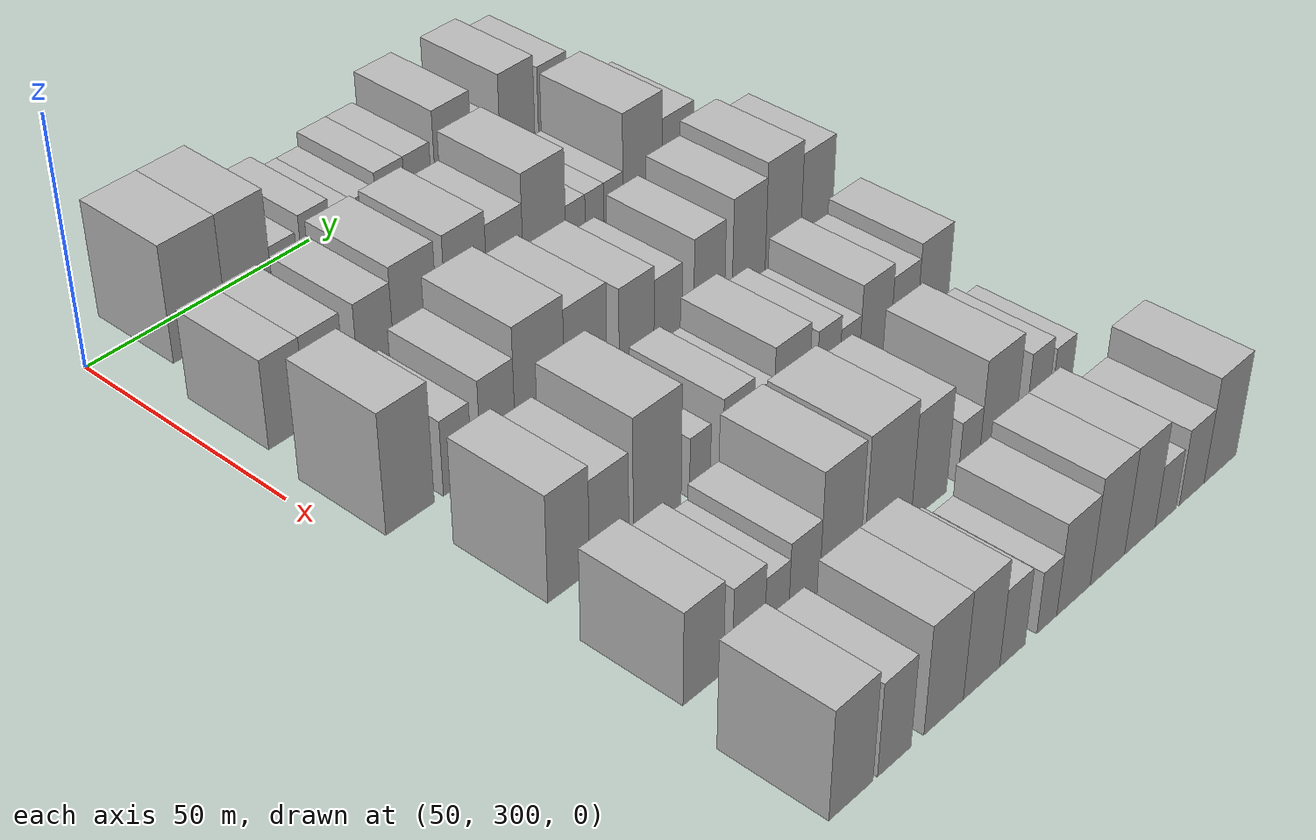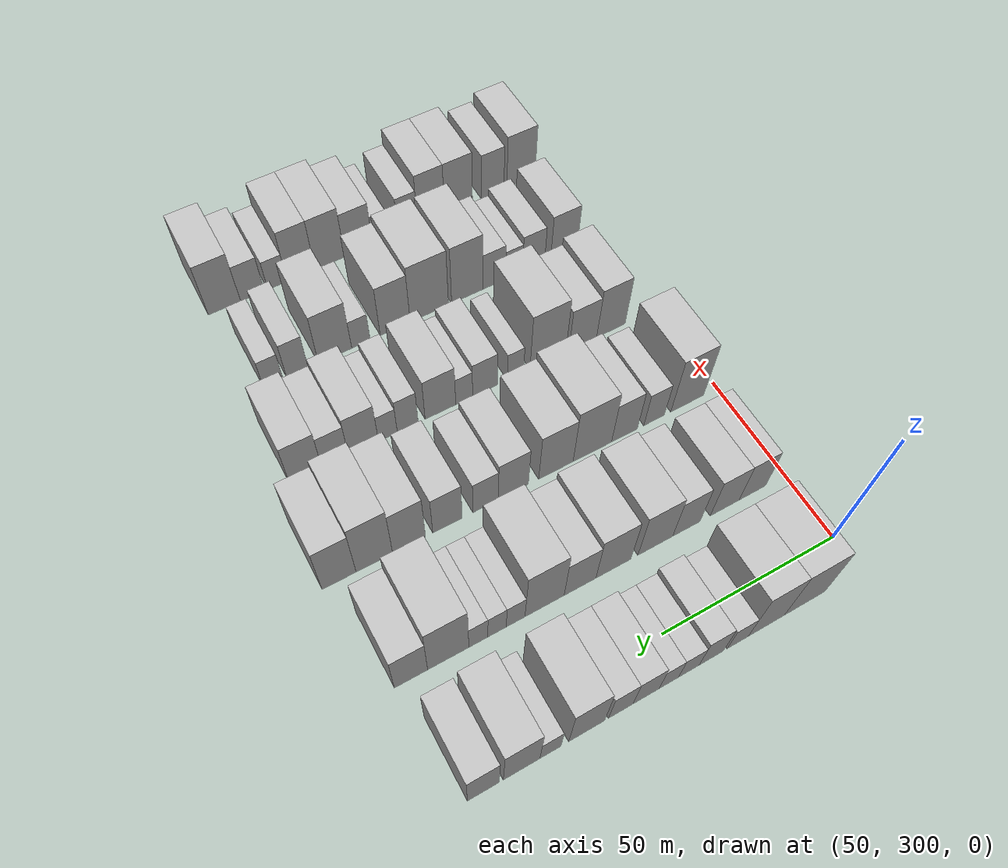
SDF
<sdf version="1.6">
 <world name="default">
  <model name="building_96">
   <static>1</static>
   <pose>50.0000 316.4440 0 0.000000 0.000000 0.000000</pose>
   <link name="link">
    <pose>0 0 12.00 0 0 0</pose>
    <collision name="collision"><geometry><box><size>20.0000 11.9352 24.0000</size></box></geometry></collision>
    <visual name="visual">
     <cast_shadows>0</cast_shadows>
     <geometry><box><size>20.0000 11.9352 24.0000</size></box></geometry>
     <material>
      <script>
       <uri>model://HANNAS_wall/materials/scripts</uri>
       <uri>model://HANNAS_wall/materials/textures</uri>
       <name>vrc/HANNAS_wall</name>
      </script>
     </material>
    </visual>
   </link>
  </model>
  <model name="building_97">
   <static>1</static>
   <pose>50.0000 327.6187 0 0.000000 0.000000 0.000000</pose>
   <link name="link">
    <pose>0 0 12.00 0 0 0</pose>
    <collision name="collision"><geometry><box><size>20.0000 10.4141 24.0000</size></box></geometry></collision>
    <visual name="visual">
     <cast_shadows>0</cast_shadows>
     <geometry><box><size>20.0000 10.4141 24.0000</size></box></geometry>
     <material>
      <script>
       <uri>model://HANNAS_wall/materials/scripts</uri>
       <uri>model://HANNAS_wall/materials/textures</uri>
       <name>vrc/HANNAS_wall</name>
      </script>
     </material>
    </visual>
   </link>
  </model>
  <model name="building_98">
   <static>1</static>
   <pose>50.0000 335.7996 0 0.000000 0.000000 0.000000</pose>
   <link name="link">
    <pose>0 0 6.00 0 0 0</pose>
    <collision name="collision"><geometry><box><size>20.0000 5.9477 12.0000</size></box></geometry></collision>
    <visual name="visual">
     <cast_shadows>0</cast_shadows>
     <geometry><box><size>20.0000 5.9477 12.0000</size></box></geometry>
     <material>
      <script>
       <uri>model://HANNAS_wall/materials/scripts</uri>
       <uri>model://HANNAS_wall/materials/textures</uri>
       <name>vrc/HANNAS_wall</name>
      </script>
     </material>
    </visual>
   </link>
  </model>
  <model name="building_99">
   <static>1</static>
   <pose>50.0000 343.1887 0 0.000000 0.000000 0.000000</pose>
   <link name="link">
    <pose>0 0 7.50 0 0 0</pose>
    <collision name="collision"><geometry><box><size>20.0000 6.8304 15.0000</size></box></geometry></collision>
    <visual name="visual">
     <cast_shadows>0</cast_shadows>
     <geometry><box><size>20.0000 6.8304 15.0000</size></box></geometry>
     <material>
      <script>
       <uri>model://HANNAS_wall/materials/scripts</uri>
       <uri>model://HANNAS_wall/materials/textures</uri>
       <name>vrc/HANNAS_wall</name>
      </script>
     </material>
    </visual>
   </link>
  </model>
  <model name="building_100">
   <static>1</static>
   <pose>50.0000 349.4321 0 0.000000 0.000000 0.000000</pose>
   <link name="link">
    <pose>0 0 6.00 0 0 0</pose>
    <collision name="collision"><geometry><box><size>20.0000 5.6566 12.0000</size></box></geometry></collision>
    <visual name="visual">
     <cast_shadows>0</cast_shadows>
     <geometry><box><size>20.0000 5.6566 12.0000</size></box></geometry>
     <material>
      <script>
       <uri>model://HANNAS_wall/materials/scripts</uri>
       <uri>model://HANNAS_wall/materials/textures</uri>
       <name>vrc/HANNAS_wall</name>
      </script>
     </material>
    </visual>
   </link>
  </model>
  <model name="building_101">
   <static>1</static>
   <pose>50.0000 354.8723 0 0.000000 0.000000 0.000000</pose>
   <link name="link">
    <pose>0 0 6.00 0 0 0</pose>
    <collision name="collision"><geometry><box><size>20.0000 5.2237 12.0000</size></box></geometry></collision>
    <visual name="visual">
     <cast_shadows>0</cast_shadows>
     <geometry><box><size>20.0000 5.2237 12.0000</size></box></geometry>
     <material>
      <script>
       <uri>model://HANNAS_wall/materials/scripts</uri>
       <uri>model://HANNAS_wall/materials/textures</uri>
       <name>vrc/HANNAS_wall</name>
      </script>
     </material>
    </visual>
   </link>
  </model>
  <model name="building_102">
   <static>1</static>
   <pose>50.0000 360.9731 0 0.000000 0.000000 0.000000</pose>
   <link name="link">
    <pose>0 0 7.50 0 0 0</pose>
    <collision name="collision"><geometry><box><size>20.0000 6.9780 15.0000</size></box></geometry></collision>
    <visual name="visual">
     <cast_shadows>0</cast_shadows>
     <geometry><box><size>20.0000 6.9780 15.0000</size></box></geometry>
     <material>
      <script>
       <uri>model://HANNAS_wall/materials/scripts</uri>
       <uri>model://HANNAS_wall/materials/textures</uri>
       <name>vrc/HANNAS_wall</name>
      </script>
     </material>
    </visual>
   </link>
  </model>
  <model name="building_103">
   <static>1</static>
   <pose>50.0000 367.7158 0 0.000000 0.000000 0.000000</pose>
   <link name="link">
    <pose>0 0 7.50 0 0 0</pose>
    <collision name="collision"><geometry><box><size>20.0000 6.5073 15.0000</size></box></geometry></collision>
    <visual name="visual">
     <cast_shadows>0</cast_shadows>
     <geometry><box><size>20.0000 6.5073 15.0000</size></box></geometry>
     <material>
      <script>
       <uri>model://HANNAS_wall/materials/scripts</uri>
       <uri>model://HANNAS_wall/materials/textures</uri>
       <name>vrc/HANNAS_wall</name>
      </script>
     </material>
    </visual>
   </link>
  </model>
  <model name="building_104">
   <static>1</static>
   <pose>50.0000 376.6193 0 0.000000 0.000000 0.000000</pose>
   <link name="link">
    <pose>0 0 10.50 0 0 0</pose>
    <collision name="collision"><geometry><box><size>20.0000 9.2997 21.0000</size></box></geometry></collision>
    <visual name="visual">
     <cast_shadows>0</cast_shadows>
     <geometry><box><size>20.0000 9.2997 21.0000</size></box></geometry>
     <material>
      <script>
       <uri>model://HANNAS_wall/materials/scripts</uri>
       <uri>model://HANNAS_wall/materials/textures</uri>
       <name>vrc/HANNAS_wall</name>
      </script>
     </material>
    </visual>
   </link>
  </model>
  <model name="building_105">
   <static>1</static>
   <pose>50.0000 385.9391 0 0.000000 0.000000 0.000000</pose>
   <link name="link">
    <pose>0 0 6.00 0 0 0</pose>
    <collision name="collision"><geometry><box><size>20.0000 5.3399 12.0000</size></box></geometry></collision>
    <visual name="visual">
     <cast_shadows>0</cast_shadows>
     <geometry><box><size>20.0000 5.3399 12.0000</size></box></geometry>
     <material>
      <script>
       <uri>model://HANNAS_wall/materials/scripts</uri>
       <uri>model://HANNAS_wall/materials/textures</uri>
       <name>vrc/HANNAS_wall</name>
      </script>
     </material>
    </visual>
   </link>
  </model>
  <model name="building_106">
   <static>1</static>
   <pose>50.0000 393.1750 0 0.000000 0.000000 0.000000</pose>
   <link name="link">
    <pose>0 0 10.50 0 0 0</pose>
    <collision name="collision"><geometry><box><size>20.0000 9.1319 21.0000</size></box></geometry></collision>
    <visual name="visual">
     <cast_shadows>0</cast_shadows>
     <geometry><box><size>20.0000 9.1319 21.0000</size></box></geometry>
     <material>
      <script>
       <uri>model://HANNAS_wall/materials/scripts</uri>
       <uri>model://HANNAS_wall/materials/textures</uri>
       <name>vrc/HANNAS_wall</name>
      </script>
     </material>
    </visual>
   </link>
  </model>
  <model name="building_107">
   <static>1</static>
   <pose>50.0000 402.6415 0 0.000000 0.000000 0.000000</pose>
   <link name="link">
    <pose>0 0 9.00 0 0 0</pose>
    <collision name="collision"><geometry><box><size>20.0000 7.8012 18.0000</size></box></geometry></collision>
    <visual name="visual">
     <cast_shadows>0</cast_shadows>
     <geometry><box><size>20.0000 7.8012 18.0000</size></box></geometry>
     <material>
      <script>
       <uri>model://HANNAS_wall/materials/scripts</uri>
       <uri>model://HANNAS_wall/materials/textures</uri>
       <name>vrc/HANNAS_wall</name>
      </script>
     </material>
    </visual>
   </link>
  </model>
  <model name="building_213">
   <static>1</static>
   <pose>79.0000 310.1770 0 0.000000 0.000000 0.000000</pose>
   <link name="link">
    <pose>0 0 9.00 0 0 0</pose>
    <collision name="collision"><geometry><box><size>20.0000 8.1697 18.0000</size></box></geometry></collision>
    <visual name="visual">
     <cast_shadows>0</cast_shadows>
     <geometry><box><size>20.0000 8.1697 18.0000</size></box></geometry>
     <material>
      <script>
       <uri>model://HANNAS_wall/materials/scripts</uri>
       <uri>model://HANNAS_wall/materials/textures</uri>
       <name>vrc/HANNAS_wall</name>
      </script>
     </material>
    </visual>
   </link>
  </model>
  <model name="building_214">
   <static>1</static>
   <pose>79.0000 318.5903 0 0.000000 0.000000 0.000000</pose>
   <link name="link">
    <pose>0 0 9.00 0 0 0</pose>
    <collision name="collision"><geometry><box><size>20.0000 8.6569 18.0000</size></box></geometry></collision>
    <visual name="visual">
     <cast_shadows>0</cast_shadows>
     <geometry><box><size>20.0000 8.6569 18.0000</size></box></geometry>
     <material>
      <script>
       <uri>model://HANNAS_wall/materials/scripts</uri>
       <uri>model://HANNAS_wall/materials/textures</uri>
       <name>vrc/HANNAS_wall</name>
      </script>
     </material>
    </visual>
   </link>
  </model>
  <model name="building_215">
   <static>1</static>
   <pose>79.0000 329.9672 0 0.000000 0.000000 0.000000</pose>
   <link name="link">
    <pose>0 0 9.00 0 0 0</pose>
    <collision name="collision"><geometry><box><size>20.0000 8.0969 18.0000</size></box></geometry></collision>
    <visual name="visual">
     <cast_shadows>0</cast_shadows>
     <geometry><box><size>20.0000 8.0969 18.0000</size></box></geometry>
     <material>
      <script>
       <uri>model://HANNAS_wall/materials/scripts</uri>
       <uri>model://HANNAS_wall/materials/textures</uri>
       <name>vrc/HANNAS_wall</name>
      </script>
     </material>
    </visual>
   </link>
  </model>
  <model name="building_216">
   <static>1</static>
   <pose>79.0000 339.0556 0 0.000000 0.000000 0.000000</pose>
   <link name="link">
    <pose>0 0 10.50 0 0 0</pose>
    <collision name="collision"><geometry><box><size>20.0000 10.0798 21.0000</size></box></geometry></collision>
    <visual name="visual">
     <cast_shadows>0</cast_shadows>
     <geometry><box><size>20.0000 10.0798 21.0000</size></box></geometry>
     <material>
      <script>
       <uri>model://HANNAS_wall/materials/scripts</uri>
       <uri>model://HANNAS_wall/materials/textures</uri>
       <name>vrc/HANNAS_wall</name>
      </script>
     </material>
    </visual>
   </link>
  </model>
  <model name="building_217">
   <static>1</static>
   <pose>79.0000 351.0443 0 0.000000 0.000000 0.000000</pose>
   <link name="link">
    <pose>0 0 10.50 0 0 0</pose>
    <collision name="collision"><geometry><box><size>20.0000 9.8975 21.0000</size></box></geometry></collision>
    <visual name="visual">
     <cast_shadows>0</cast_shadows>
     <geometry><box><size>20.0000 9.8975 21.0000</size></box></geometry>
     <material>
      <script>
       <uri>model://HANNAS_wall/materials/scripts</uri>
       <uri>model://HANNAS_wall/materials/textures</uri>
       <name>vrc/HANNAS_wall</name>
      </script>
     </material>
    </visual>
   </link>
  </model>
  <model name="building_218">
   <static>1</static>
   <pose>79.0000 360.4168 0 0.000000 0.000000 0.000000</pose>
   <link name="link">
    <pose>0 0 9.00 0 0 0</pose>
    <collision name="collision"><geometry><box><size>20.0000 8.8476 18.0000</size></box></geometry></collision>
    <visual name="visual">
     <cast_shadows>0</cast_shadows>
     <geometry><box><size>20.0000 8.8476 18.0000</size></box></geometry>
     <material>
      <script>
       <uri>model://HANNAS_wall/materials/scripts</uri>
       <uri>model://HANNAS_wall/materials/textures</uri>
       <name>vrc/HANNAS_wall</name>
      </script>
     </material>
    </visual>
   </link>
  </model>
  <model name="building_219">
   <static>1</static>
   <pose>79.0000 370.1759 0 0.000000 0.000000 0.000000</pose>
   <link name="link">
    <pose>0 0 12.00 0 0 0</pose>
    <collision name="collision"><geometry><box><size>20.0000 10.6705 24.0000</size></box></geometry></collision>
    <visual name="visual">
     <cast_shadows>0</cast_shadows>
     <geometry><box><size>20.0000 10.6705 24.0000</size></box></geometry>
     <material>
      <script>
       <uri>model://HANNAS_wall/materials/scripts</uri>
       <uri>model://HANNAS_wall/materials/textures</uri>
       <name>vrc/HANNAS_wall</name>
      </script>
     </material>
    </visual>
   </link>
  </model>
  <model name="building_220">
   <static>1</static>
   <pose>79.0000 378.0116 0 0.000000 0.000000 0.000000</pose>
   <link name="link">
    <pose>0 0 6.00 0 0 0</pose>
    <collision name="collision"><geometry><box><size>20.0000 5.0010 12.0000</size></box></geometry></collision>
    <visual name="visual">
     <cast_shadows>0</cast_shadows>
     <geometry><box><size>20.0000 5.0010 12.0000</size></box></geometry>
     <material>
      <script>
       <uri>model://HANNAS_wall/materials/scripts</uri>
       <uri>model://HANNAS_wall/materials/textures</uri>
       <name>vrc/HANNAS_wall</name>
      </script>
     </material>
    </visual>
   </link>
  </model>
  <model name="building_221">
   <static>1</static>
   <pose>79.0000 382.9486 0 0.000000 0.000000 0.000000</pose>
   <link name="link">
    <pose>0 0 6.00 0 0 0</pose>
    <collision name="collision"><geometry><box><size>20.0000 4.8729 12.0000</size></box></geometry></collision>
    <visual name="visual">
     <cast_shadows>0</cast_shadows>
     <geometry><box><size>20.0000 4.8729 12.0000</size></box></geometry>
     <material>
      <script>
       <uri>model://HANNAS_wall/materials/scripts</uri>
       <uri>model://HANNAS_wall/materials/textures</uri>
       <name>vrc/HANNAS_wall</name>
      </script>
     </material>
    </visual>
   </link>
  </model>
  <model name="building_222">
   <static>1</static>
   <pose>79.0000 387.8790 0 0.000000 0.000000 0.000000</pose>
   <link name="link">
    <pose>0 0 6.00 0 0 0</pose>
    <collision name="collision"><geometry><box><size>20.0000 4.9879 12.0000</size></box></geometry></collision>
    <visual name="visual">
     <cast_shadows>0</cast_shadows>
     <geometry><box><size>20.0000 4.9879 12.0000</size></box></geometry>
     <material>
      <script>
       <uri>model://HANNAS_wall/materials/scripts</uri>
       <uri>model://HANNAS_wall/materials/textures</uri>
       <name>vrc/HANNAS_wall</name>
      </script>
     </material>
    </visual>
   </link>
  </model>
  <model name="building_223">
   <static>1</static>
   <pose>79.0000 395.6811 0 0.000000 0.000000 0.000000</pose>
   <link name="link">
    <pose>0 0 12.00 0 0 0</pose>
    <collision name="collision"><geometry><box><size>20.0000 10.6163 24.0000</size></box></geometry></collision>
    <visual name="visual">
     <cast_shadows>0</cast_shadows>
     <geometry><box><size>20.0000 10.6163 24.0000</size></box></geometry>
     <material>
      <script>
       <uri>model://HANNAS_wall/materials/scripts</uri>
       <uri>model://HANNAS_wall/materials/textures</uri>
       <name>vrc/HANNAS_wall</name>
      </script>
     </material>
    </visual>
   </link>
  </model>
  <model name="building_224">
   <static>1</static>
   <pose>79.0000 405.2188 0 0.000000 0.000000 0.000000</pose>
   <link name="link">
    <pose>0 0 9.00 0 0 0</pose>
    <collision name="collision"><geometry><box><size>20.0000 8.4591 18.0000</size></box></geometry></collision>
    <visual name="visual">
     <cast_shadows>0</cast_shadows>
     <geometry><box><size>20.0000 8.4591 18.0000</size></box></geometry>
     <material>
      <script>
       <uri>model://HANNAS_wall/materials/scripts</uri>
       <uri>model://HANNAS_wall/materials/textures</uri>
       <name>vrc/HANNAS_wall</name>
      </script>
     </material>
    </visual>
   </link>
  </model>
  <model name="building_327">
   <static>1</static>
   <pose>108.0000 309.6311 0 0.000000 0.000000 0.000000</pose>
   <link name="link">
    <pose>0 0 12.00 0 0 0</pose>
    <collision name="collision"><geometry><box><size>20.0000 10.3707 24.0000</size></box></geometry></collision>
    <visual name="visual">
     <cast_shadows>0</cast_shadows>
     <geometry><box><size>20.0000 10.3707 24.0000</size></box></geometry>
     <material>
      <script>
       <uri>model://HANNAS_wall/materials/scripts</uri>
       <uri>model://HANNAS_wall/materials/textures</uri>
       <name>vrc/HANNAS_wall</name>
      </script>
     </material>
    </visual>
   </link>
  </model>
  <model name="building_328">
   <static>1</static>
   <pose>108.0000 319.9997 0 0.000000 0.000000 0.000000</pose>
   <link name="link">
    <pose>0 0 7.50 0 0 0</pose>
    <collision name="collision"><geometry><box><size>20.0000 6.3665 15.0000</size></box></geometry></collision>
    <visual name="visual">
     <cast_shadows>0</cast_shadows>
     <geometry><box><size>20.0000 6.3665 15.0000</size></box></geometry>
     <material>
      <script>
       <uri>model://HANNAS_wall/materials/scripts</uri>
       <uri>model://HANNAS_wall/materials/textures</uri>
       <name>vrc/HANNAS_wall</name>
      </script>
     </material>
    </visual>
   </link>
  </model>
  <model name="building_329">
   <static>1</static>
   <pose>108.0000 329.1177 0 0.000000 0.000000 0.000000</pose>
   <link name="link">
    <pose>0 0 9.00 0 0 0</pose>
    <collision name="collision"><geometry><box><size>20.0000 7.8697 18.0000</size></box></geometry></collision>
    <visual name="visual">
     <cast_shadows>0</cast_shadows>
     <geometry><box><size>20.0000 7.8697 18.0000</size></box></geometry>
     <material>
      <script>
       <uri>model://HANNAS_wall/materials/scripts</uri>
       <uri>model://HANNAS_wall/materials/textures</uri>
       <name>vrc/HANNAS_wall</name>
      </script>
     </material>
    </visual>
   </link>
  </model>
  <model name="building_330">
   <static>1</static>
   <pose>108.0000 338.8087 0 0.000000 0.000000 0.000000</pose>
   <link name="link">
    <pose>0 0 12.00 0 0 0</pose>
    <collision name="collision"><geometry><box><size>20.0000 11.5123 24.0000</size></box></geometry></collision>
    <visual name="visual">
     <cast_shadows>0</cast_shadows>
     <geometry><box><size>20.0000 11.5123 24.0000</size></box></geometry>
     <material>
      <script>
       <uri>model://HANNAS_wall/materials/scripts</uri>
       <uri>model://HANNAS_wall/materials/textures</uri>
       <name>vrc/HANNAS_wall</name>
      </script>
     </material>
    </visual>
   </link>
  </model>
  <model name="building_331">
   <static>1</static>
   <pose>108.0000 349.6052 0 0.000000 0.000000 0.000000</pose>
   <link name="link">
    <pose>0 0 10.50 0 0 0</pose>
    <collision name="collision"><geometry><box><size>20.0000 10.0808 21.0000</size></box></geometry></collision>
    <visual name="visual">
     <cast_shadows>0</cast_shadows>
     <geometry><box><size>20.0000 10.0808 21.0000</size></box></geometry>
     <material>
      <script>
       <uri>model://HANNAS_wall/materials/scripts</uri>
       <uri>model://HANNAS_wall/materials/textures</uri>
       <name>vrc/HANNAS_wall</name>
      </script>
     </material>
    </visual>
   </link>
  </model>
  <model name="building_332">
   <static>1</static>
   <pose>108.0000 361.9657 0 0.000000 0.000000 0.000000</pose>
   <link name="link">
    <pose>0 0 9.00 0 0 0</pose>
    <collision name="collision"><geometry><box><size>20.0000 8.6402 18.0000</size></box></geometry></collision>
    <visual name="visual">
     <cast_shadows>0</cast_shadows>
     <geometry><box><size>20.0000 8.6402 18.0000</size></box></geometry>
     <material>
      <script>
       <uri>model://HANNAS_wall/materials/scripts</uri>
       <uri>model://HANNAS_wall/materials/textures</uri>
       <name>vrc/HANNAS_wall</name>
      </script>
     </material>
    </visual>
   </link>
  </model>
  <model name="building_333">
   <static>1</static>
   <pose>108.0000 369.8508 0 0.000000 0.000000 0.000000</pose>
   <link name="link">
    <pose>0 0 7.50 0 0 0</pose>
    <collision name="collision"><geometry><box><size>20.0000 7.1300 15.0000</size></box></geometry></collision>
    <visual name="visual">
     <cast_shadows>0</cast_shadows>
     <geometry><box><size>20.0000 7.1300 15.0000</size></box></geometry>
     <material>
      <script>
       <uri>model://HANNAS_wall/materials/scripts</uri>
       <uri>model://HANNAS_wall/materials/textures</uri>
       <name>vrc/HANNAS_wall</name>
      </script>
     </material>
    </visual>
   </link>
  </model>
  <model name="building_334">
   <static>1</static>
   <pose>108.0000 380.4694 0 0.000000 0.000000 0.000000</pose>
   <link name="link">
    <pose>0 0 9.00 0 0 0</pose>
    <collision name="collision"><geometry><box><size>20.0000 8.1072 18.0000</size></box></geometry></collision>
    <visual name="visual">
     <cast_shadows>0</cast_shadows>
     <geometry><box><size>20.0000 8.1072 18.0000</size></box></geometry>
     <material>
      <script>
       <uri>model://HANNAS_wall/materials/scripts</uri>
       <uri>model://HANNAS_wall/materials/textures</uri>
       <name>vrc/HANNAS_wall</name>
      </script>
     </material>
    </visual>
   </link>
  </model>
  <model name="building_335">
   <static>1</static>
   <pose>108.0000 390.9584 0 0.000000 0.000000 0.000000</pose>
   <link name="link">
    <pose>0 0 10.50 0 0 0</pose>
    <collision name="collision"><geometry><box><size>20.0000 8.8708 21.0000</size></box></geometry></collision>
    <visual name="visual">
     <cast_shadows>0</cast_shadows>
     <geometry><box><size>20.0000 8.8708 21.0000</size></box></geometry>
     <material>
      <script>
       <uri>model://HANNAS_wall/materials/scripts</uri>
       <uri>model://HANNAS_wall/materials/textures</uri>
       <name>vrc/HANNAS_wall</name>
      </script>
     </material>
    </visual>
   </link>
  </model>
  <model name="building_336">
   <static>1</static>
   <pose>108.0000 400.2625 0 0.000000 0.000000 0.000000</pose>
   <link name="link">
    <pose>0 0 12.00 0 0 0</pose>
    <collision name="collision"><geometry><box><size>20.0000 9.7373 24.0000</size></box></geometry></collision>
    <visual name="visual">
     <cast_shadows>0</cast_shadows>
     <geometry><box><size>20.0000 9.7373 24.0000</size></box></geometry>
     <material>
      <script>
       <uri>model://HANNAS_wall/materials/scripts</uri>
       <uri>model://HANNAS_wall/materials/textures</uri>
       <name>vrc/HANNAS_wall</name>
      </script>
     </material>
    </visual>
   </link>
  </model>
  <model name="building_337">
   <static>1</static>
   <pose>108.0000 409.5854 0 0.000000 0.000000 0.000000</pose>
   <link name="link">
    <pose>0 0 10.50 0 0 0</pose>
    <collision name="collision"><geometry><box><size>20.0000 8.9086 21.0000</size></box></geometry></collision>
    <visual name="visual">
     <cast_shadows>0</cast_shadows>
     <geometry><box><size>20.0000 8.9086 21.0000</size></box></geometry>
     <material>
      <script>
       <uri>model://HANNAS_wall/materials/scripts</uri>
       <uri>model://HANNAS_wall/materials/textures</uri>
       <name>vrc/HANNAS_wall</name>
      </script>
     </material>
    </visual>
   </link>
  </model>
  <model name="building_443">
   <static>1</static>
   <pose>137.0000 314.6886 0 0.000000 0.000000 0.000000</pose>
   <link name="link">
    <pose>0 0 10.50 0 0 0</pose>
    <collision name="collision"><geometry><box><size>20.0000 9.1594 21.0000</size></box></geometry></collision>
    <visual name="visual">
     <cast_shadows>0</cast_shadows>
     <geometry><box><size>20.0000 9.1594 21.0000</size></box></geometry>
     <material>
      <script>
       <uri>model://HANNAS_wall/materials/scripts</uri>
       <uri>model://HANNAS_wall/materials/textures</uri>
       <name>vrc/HANNAS_wall</name>
      </script>
     </material>
    </visual>
   </link>
  </model>
  <model name="building_444">
   <static>1</static>
   <pose>137.0000 323.6743 0 0.000000 0.000000 0.000000</pose>
   <link name="link">
    <pose>0 0 9.00 0 0 0</pose>
    <collision name="collision"><geometry><box><size>20.0000 8.8120 18.0000</size></box></geometry></collision>
    <visual name="visual">
     <cast_shadows>0</cast_shadows>
     <geometry><box><size>20.0000 8.8120 18.0000</size></box></geometry>
     <material>
      <script>
       <uri>model://HANNAS_wall/materials/scripts</uri>
       <uri>model://HANNAS_wall/materials/textures</uri>
       <name>vrc/HANNAS_wall</name>
      </script>
     </material>
    </visual>
   </link>
  </model>
  <model name="building_445">
   <static>1</static>
   <pose>137.0000 334.6371 0 0.000000 0.000000 0.000000</pose>
   <link name="link">
    <pose>0 0 12.00 0 0 0</pose>
    <collision name="collision"><geometry><box><size>20.0000 11.1135 24.0000</size></box></geometry></collision>
    <visual name="visual">
     <cast_shadows>0</cast_shadows>
     <geometry><box><size>20.0000 11.1135 24.0000</size></box></geometry>
     <material>
      <script>
       <uri>model://HANNAS_wall/materials/scripts</uri>
       <uri>model://HANNAS_wall/materials/textures</uri>
       <name>vrc/HANNAS_wall</name>
      </script>
     </material>
    </visual>
   </link>
  </model>
  <model name="building_446">
   <static>1</static>
   <pose>137.0000 344.6770 0 0.000000 0.000000 0.000000</pose>
   <link name="link">
    <pose>0 0 6.00 0 0 0</pose>
    <collision name="collision"><geometry><box><size>20.0000 4.9663 12.0000</size></box></geometry></collision>
    <visual name="visual">
     <cast_shadows>0</cast_shadows>
     <geometry><box><size>20.0000 4.9663 12.0000</size></box></geometry>
     <material>
      <script>
       <uri>model://HANNAS_wall/materials/scripts</uri>
       <uri>model://HANNAS_wall/materials/textures</uri>
       <name>vrc/HANNAS_wall</name>
      </script>
     </material>
    </visual>
   </link>
  </model>
  <model name="building_447">
   <static>1</static>
   <pose>137.0000 353.8791 0 0.000000 0.000000 0.000000</pose>
   <link name="link">
    <pose>0 0 7.50 0 0 0</pose>
    <collision name="collision"><geometry><box><size>20.0000 7.4378 15.0000</size></box></geometry></collision>
    <visual name="visual">
     <cast_shadows>0</cast_shadows>
     <geometry><box><size>20.0000 7.4378 15.0000</size></box></geometry>
     <material>
      <script>
       <uri>model://HANNAS_wall/materials/scripts</uri>
       <uri>model://HANNAS_wall/materials/textures</uri>
       <name>vrc/HANNAS_wall</name>
      </script>
     </material>
    </visual>
   </link>
  </model>
  <model name="building_448">
   <static>1</static>
   <pose>137.0000 360.1022 0 0.000000 0.000000 0.000000</pose>
   <link name="link">
    <pose>0 0 6.00 0 0 0</pose>
    <collision name="collision"><geometry><box><size>20.0000 5.0084 12.0000</size></box></geometry></collision>
    <visual name="visual">
     <cast_shadows>0</cast_shadows>
     <geometry><box><size>20.0000 5.0084 12.0000</size></box></geometry>
     <material>
      <script>
       <uri>model://HANNAS_wall/materials/scripts</uri>
       <uri>model://HANNAS_wall/materials/textures</uri>
       <name>vrc/HANNAS_wall</name>
      </script>
     </material>
    </visual>
   </link>
  </model>
  <model name="building_449">
   <static>1</static>
   <pose>137.0000 367.1017 0 0.000000 0.000000 0.000000</pose>
   <link name="link">
    <pose>0 0 9.00 0 0 0</pose>
    <collision name="collision"><geometry><box><size>20.0000 8.9906 18.0000</size></box></geometry></collision>
    <visual name="visual">
     <cast_shadows>0</cast_shadows>
     <geometry><box><size>20.0000 8.9906 18.0000</size></box></geometry>
     <material>
      <script>
       <uri>model://HANNAS_wall/materials/scripts</uri>
       <uri>model://HANNAS_wall/materials/textures</uri>
       <name>vrc/HANNAS_wall</name>
      </script>
     </material>
    </visual>
   </link>
  </model>
  <model name="building_450">
   <static>1</static>
   <pose>137.0000 376.6030 0 0.000000 0.000000 0.000000</pose>
   <link name="link">
    <pose>0 0 7.50 0 0 0</pose>
    <collision name="collision"><geometry><box><size>20.0000 6.0119 15.0000</size></box></geometry></collision>
    <visual name="visual">
     <cast_shadows>0</cast_shadows>
     <geometry><box><size>20.0000 6.0119 15.0000</size></box></geometry>
     <material>
      <script>
       <uri>model://HANNAS_wall/materials/scripts</uri>
       <uri>model://HANNAS_wall/materials/textures</uri>
       <name>vrc/HANNAS_wall</name>
      </script>
     </material>
    </visual>
   </link>
  </model>
  <model name="building_451">
   <static>1</static>
   <pose>137.0000 382.2863 0 0.000000 0.000000 0.000000</pose>
   <link name="link">
    <pose>0 0 6.00 0 0 0</pose>
    <collision name="collision"><geometry><box><size>20.0000 5.3548 12.0000</size></box></geometry></collision>
    <visual name="visual">
     <cast_shadows>0</cast_shadows>
     <geometry><box><size>20.0000 5.3548 12.0000</size></box></geometry>
     <material>
      <script>
       <uri>model://HANNAS_wall/materials/scripts</uri>
       <uri>model://HANNAS_wall/materials/textures</uri>
       <name>vrc/HANNAS_wall</name>
      </script>
     </material>
    </visual>
   </link>
  </model>
  <model name="building_452">
   <static>1</static>
   <pose>137.0000 389.2031 0 0.000000 0.000000 0.000000</pose>
   <link name="link">
    <pose>0 0 9.00 0 0 0</pose>
    <collision name="collision"><geometry><box><size>20.0000 8.4788 18.0000</size></box></geometry></collision>
    <visual name="visual">
     <cast_shadows>0</cast_shadows>
     <geometry><box><size>20.0000 8.4788 18.0000</size></box></geometry>
     <material>
      <script>
       <uri>model://HANNAS_wall/materials/scripts</uri>
       <uri>model://HANNAS_wall/materials/textures</uri>
       <name>vrc/HANNAS_wall</name>
      </script>
     </material>
    </visual>
   </link>
  </model>
  <model name="building_453">
   <static>1</static>
   <pose>137.0000 397.1287 0 0.000000 0.000000 0.000000</pose>
   <link name="link">
    <pose>0 0 7.50 0 0 0</pose>
    <collision name="collision"><geometry><box><size>20.0000 7.3724 15.0000</size></box></geometry></collision>
    <visual name="visual">
     <cast_shadows>0</cast_shadows>
     <geometry><box><size>20.0000 7.3724 15.0000</size></box></geometry>
     <material>
      <script>
       <uri>model://HANNAS_wall/materials/scripts</uri>
       <uri>model://HANNAS_wall/materials/textures</uri>
       <name>vrc/HANNAS_wall</name>
      </script>
     </material>
    </visual>
   </link>
  </model>
  <model name="building_454">
   <static>1</static>
   <pose>137.0000 405.2414 0 0.000000 0.000000 0.000000</pose>
   <link name="link">
    <pose>0 0 9.00 0 0 0</pose>
    <collision name="collision"><geometry><box><size>20.0000 8.8530 18.0000</size></box></geometry></collision>
    <visual name="visual">
     <cast_shadows>0</cast_shadows>
     <geometry><box><size>20.0000 8.8530 18.0000</size></box></geometry>
     <material>
      <script>
       <uri>model://HANNAS_wall/materials/scripts</uri>
       <uri>model://HANNAS_wall/materials/textures</uri>
       <name>vrc/HANNAS_wall</name>
      </script>
     </material>
    </visual>
   </link>
  </model>
  <model name="building_554">
   <static>1</static>
   <pose>166.0000 312.0116 0 0.000000 0.000000 0.000000</pose>
   <link name="link">
    <pose>0 0 9.00 0 0 0</pose>
    <collision name="collision"><geometry><box><size>20.0000 8.8256 18.0000</size></box></geometry></collision>
    <visual name="visual">
     <cast_shadows>0</cast_shadows>
     <geometry><box><size>20.0000 8.8256 18.0000</size></box></geometry>
     <material>
      <script>
       <uri>model://HANNAS_wall/materials/scripts</uri>
       <uri>model://HANNAS_wall/materials/textures</uri>
       <name>vrc/HANNAS_wall</name>
      </script>
     </material>
    </visual>
   </link>
  </model>
  <model name="building_555">
   <static>1</static>
   <pose>166.0000 322.0577 0 0.000000 0.000000 0.000000</pose>
   <link name="link">
    <pose>0 0 7.50 0 0 0</pose>
    <collision name="collision"><geometry><box><size>20.0000 7.2665 15.0000</size></box></geometry></collision>
    <visual name="visual">
     <cast_shadows>0</cast_shadows>
     <geometry><box><size>20.0000 7.2665 15.0000</size></box></geometry>
     <material>
      <script>
       <uri>model://HANNAS_wall/materials/scripts</uri>
       <uri>model://HANNAS_wall/materials/textures</uri>
       <name>vrc/HANNAS_wall</name>
      </script>
     </material>
    </visual>
   </link>
  </model>
  <model name="building_556">
   <static>1</static>
   <pose>166.0000 328.4629 0 0.000000 0.000000 0.000000</pose>
   <link name="link">
    <pose>0 0 6.00 0 0 0</pose>
    <collision name="collision"><geometry><box><size>20.0000 5.5441 12.0000</size></box></geometry></collision>
    <visual name="visual">
     <cast_shadows>0</cast_shadows>
     <geometry><box><size>20.0000 5.5441 12.0000</size></box></geometry>
     <material>
      <script>
       <uri>model://HANNAS_wall/materials/scripts</uri>
       <uri>model://HANNAS_wall/materials/textures</uri>
       <name>vrc/HANNAS_wall</name>
      </script>
     </material>
    </visual>
   </link>
  </model>
  <model name="building_557">
   <static>1</static>
   <pose>166.0000 334.8329 0 0.000000 0.000000 0.000000</pose>
   <link name="link">
    <pose>0 0 7.50 0 0 0</pose>
    <collision name="collision"><geometry><box><size>20.0000 7.1958 15.0000</size></box></geometry></collision>
    <visual name="visual">
     <cast_shadows>0</cast_shadows>
     <geometry><box><size>20.0000 7.1958 15.0000</size></box></geometry>
     <material>
      <script>
       <uri>model://HANNAS_wall/materials/scripts</uri>
       <uri>model://HANNAS_wall/materials/textures</uri>
       <name>vrc/HANNAS_wall</name>
      </script>
     </material>
    </visual>
   </link>
  </model>
  <model name="building_558">
   <static>1</static>
   <pose>166.0000 343.3697 0 0.000000 0.000000 0.000000</pose>
   <link name="link">
    <pose>0 0 12.00 0 0 0</pose>
    <collision name="collision"><geometry><box><size>20.0000 9.8780 24.0000</size></box></geometry></collision>
    <visual name="visual">
     <cast_shadows>0</cast_shadows>
     <geometry><box><size>20.0000 9.8780 24.0000</size></box></geometry>
     <material>
      <script>
       <uri>model://HANNAS_wall/materials/scripts</uri>
       <uri>model://HANNAS_wall/materials/textures</uri>
       <name>vrc/HANNAS_wall</name>
      </script>
     </material>
    </visual>
   </link>
  </model>
  <model name="building_559">
   <static>1</static>
   <pose>166.0000 355.2273 0 0.000000 0.000000 0.000000</pose>
   <link name="link">
    <pose>0 0 12.00 0 0 0</pose>
    <collision name="collision"><geometry><box><size>20.0000 11.8372 24.0000</size></box></geometry></collision>
    <visual name="visual">
     <cast_shadows>0</cast_shadows>
     <geometry><box><size>20.0000 11.8372 24.0000</size></box></geometry>
     <material>
      <script>
       <uri>model://HANNAS_wall/materials/scripts</uri>
       <uri>model://HANNAS_wall/materials/textures</uri>
       <name>vrc/HANNAS_wall</name>
      </script>
     </material>
    </visual>
   </link>
  </model>
  <model name="building_560">
   <static>1</static>
   <pose>166.0000 365.7049 0 0.000000 0.000000 0.000000</pose>
   <link name="link">
    <pose>0 0 10.50 0 0 0</pose>
    <collision name="collision"><geometry><box><size>20.0000 9.1179 21.0000</size></box></geometry></collision>
    <visual name="visual">
     <cast_shadows>0</cast_shadows>
     <geometry><box><size>20.0000 9.1179 21.0000</size></box></geometry>
     <material>
      <script>
       <uri>model://HANNAS_wall/materials/scripts</uri>
       <uri>model://HANNAS_wall/materials/textures</uri>
       <name>vrc/HANNAS_wall</name>
      </script>
     </material>
    </visual>
   </link>
  </model>
  <model name="building_561">
   <static>1</static>
   <pose>166.0000 376.0319 0 0.000000 0.000000 0.000000</pose>
   <link name="link">
    <pose>0 0 6.00 0 0 0</pose>
    <collision name="collision"><geometry><box><size>20.0000 5.5361 12.0000</size></box></geometry></collision>
    <visual name="visual">
     <cast_shadows>0</cast_shadows>
     <geometry><box><size>20.0000 5.5361 12.0000</size></box></geometry>
     <material>
      <script>
       <uri>model://HANNAS_wall/materials/scripts</uri>
       <uri>model://HANNAS_wall/materials/textures</uri>
       <name>vrc/HANNAS_wall</name>
      </script>
     </material>
    </visual>
   </link>
  </model>
  <model name="building_562">
   <static>1</static>
   <pose>166.0000 383.7030 0 0.000000 0.000000 0.000000</pose>
   <link name="link">
    <pose>0 0 10.50 0 0 0</pose>
    <collision name="collision"><geometry><box><size>20.0000 9.8061 21.0000</size></box></geometry></collision>
    <visual name="visual">
     <cast_shadows>0</cast_shadows>
     <geometry><box><size>20.0000 9.8061 21.0000</size></box></geometry>
     <material>
      <script>
       <uri>model://HANNAS_wall/materials/scripts</uri>
       <uri>model://HANNAS_wall/materials/textures</uri>
       <name>vrc/HANNAS_wall</name>
      </script>
     </material>
    </visual>
   </link>
  </model>
  <model name="building_563">
   <static>1</static>
   <pose>166.0000 394.7249 0 0.000000 0.000000 0.000000</pose>
   <link name="link">
    <pose>0 0 7.50 0 0 0</pose>
    <collision name="collision"><geometry><box><size>20.0000 6.2377 15.0000</size></box></geometry></collision>
    <visual name="visual">
     <cast_shadows>0</cast_shadows>
     <geometry><box><size>20.0000 6.2377 15.0000</size></box></geometry>
     <material>
      <script>
       <uri>model://HANNAS_wall/materials/scripts</uri>
       <uri>model://HANNAS_wall/materials/textures</uri>
       <name>vrc/HANNAS_wall</name>
      </script>
     </material>
    </visual>
   </link>
  </model>
  <model name="building_564">
   <static>1</static>
   <pose>166.0000 401.6407 0 0.000000 0.000000 0.000000</pose>
   <link name="link">
    <pose>0 0 6.00 0 0 0</pose>
    <collision name="collision"><geometry><box><size>20.0000 5.5941 12.0000</size></box></geometry></collision>
    <visual name="visual">
     <cast_shadows>0</cast_shadows>
     <geometry><box><size>20.0000 5.5941 12.0000</size></box></geometry>
     <material>
      <script>
       <uri>model://HANNAS_wall/materials/scripts</uri>
       <uri>model://HANNAS_wall/materials/textures</uri>
       <name>vrc/HANNAS_wall</name>
      </script>
     </material>
    </visual>
   </link>
  </model>
  <model name="building_670">
   <static>1</static>
   <pose>195.0000 309.3827 0 0.000000 0.000000 0.000000</pose>
   <link name="link">
    <pose>0 0 10.50 0 0 0</pose>
    <collision name="collision"><geometry><box><size>20.0000 9.7221 21.0000</size></box></geometry></collision>
    <visual name="visual">
     <cast_shadows>0</cast_shadows>
     <geometry><box><size>20.0000 9.7221 21.0000</size></box></geometry>
     <material>
      <script>
       <uri>model://HANNAS_wall/materials/scripts</uri>
       <uri>model://HANNAS_wall/materials/textures</uri>
       <name>vrc/HANNAS_wall</name>
      </script>
     </material>
    </visual>
   </link>
  </model>
  <model name="building_671">
   <static>1</static>
   <pose>195.0000 319.0492 0 0.000000 0.000000 0.000000</pose>
   <link name="link">
    <pose>0 0 9.00 0 0 0</pose>
    <collision name="collision"><geometry><box><size>20.0000 7.6107 18.0000</size></box></geometry></collision>
    <visual name="visual">
     <cast_shadows>0</cast_shadows>
     <geometry><box><size>20.0000 7.6107 18.0000</size></box></geometry>
     <material>
      <script>
       <uri>model://HANNAS_wall/materials/scripts</uri>
       <uri>model://HANNAS_wall/materials/textures</uri>
       <name>vrc/HANNAS_wall</name>
      </script>
     </material>
    </visual>
   </link>
  </model>
  <model name="building_672">
   <static>1</static>
   <pose>195.0000 330.5088 0 0.000000 0.000000 0.000000</pose>
   <link name="link">
    <pose>0 0 10.50 0 0 0</pose>
    <collision name="collision"><geometry><box><size>20.0000 9.3086 21.0000</size></box></geometry></collision>
    <visual name="visual">
     <cast_shadows>0</cast_shadows>
     <geometry><box><size>20.0000 9.3086 21.0000</size></box></geometry>
     <material>
      <script>
       <uri>model://HANNAS_wall/materials/scripts</uri>
       <uri>model://HANNAS_wall/materials/textures</uri>
       <name>vrc/HANNAS_wall</name>
      </script>
     </material>
    </visual>
   </link>
  </model>
  <model name="building_673">
   <static>1</static>
   <pose>195.0000 339.5981 0 0.000000 0.000000 0.000000</pose>
   <link name="link">
    <pose>0 0 10.50 0 0 0</pose>
    <collision name="collision"><geometry><box><size>20.0000 8.8700 21.0000</size></box></geometry></collision>
    <visual name="visual">
     <cast_shadows>0</cast_shadows>
     <geometry><box><size>20.0000 8.8700 21.0000</size></box></geometry>
     <material>
      <script>
       <uri>model://HANNAS_wall/materials/scripts</uri>
       <uri>model://HANNAS_wall/materials/textures</uri>
       <name>vrc/HANNAS_wall</name>
      </script>
     </material>
    </visual>
   </link>
  </model>
  <model name="building_674">
   <static>1</static>
   <pose>195.0000 347.2024 0 0.000000 0.000000 0.000000</pose>
   <link name="link">
    <pose>0 0 7.50 0 0 0</pose>
    <collision name="collision"><geometry><box><size>20.0000 6.3385 15.0000</size></box></geometry></collision>
    <visual name="visual">
     <cast_shadows>0</cast_shadows>
     <geometry><box><size>20.0000 6.3385 15.0000</size></box></geometry>
     <material>
      <script>
       <uri>model://HANNAS_wall/materials/scripts</uri>
       <uri>model://HANNAS_wall/materials/textures</uri>
       <name>vrc/HANNAS_wall</name>
      </script>
     </material>
    </visual>
   </link>
  </model>
  <model name="building_675">
   <static>1</static>
   <pose>195.0000 355.9241 0 0.000000 0.000000 0.000000</pose>
   <link name="link">
    <pose>0 0 6.00 0 0 0</pose>
    <collision name="collision"><geometry><box><size>20.0000 5.1049 12.0000</size></box></geometry></collision>
    <visual name="visual">
     <cast_shadows>0</cast_shadows>
     <geometry><box><size>20.0000 5.1049 12.0000</size></box></geometry>
     <material>
      <script>
       <uri>model://HANNAS_wall/materials/scripts</uri>
       <uri>model://HANNAS_wall/materials/textures</uri>
       <name>vrc/HANNAS_wall</name>
      </script>
     </material>
    </visual>
   </link>
  </model>
  <model name="building_676">
   <static>1</static>
   <pose>195.0000 362.8607 0 0.000000 0.000000 0.000000</pose>
   <link name="link">
    <pose>0 0 9.00 0 0 0</pose>
    <collision name="collision"><geometry><box><size>20.0000 8.7683 18.0000</size></box></geometry></collision>
    <visual name="visual">
     <cast_shadows>0</cast_shadows>
     <geometry><box><size>20.0000 8.7683 18.0000</size></box></geometry>
     <material>
      <script>
       <uri>model://HANNAS_wall/materials/scripts</uri>
       <uri>model://HANNAS_wall/materials/textures</uri>
       <name>vrc/HANNAS_wall</name>
      </script>
     </material>
    </visual>
   </link>
  </model>
  <model name="building_677">
   <static>1</static>
   <pose>195.0000 371.8837 0 0.000000 0.000000 0.000000</pose>
   <link name="link">
    <pose>0 0 10.50 0 0 0</pose>
    <collision name="collision"><geometry><box><size>20.0000 9.2778 21.0000</size></box></geometry></collision>
    <visual name="visual">
     <cast_shadows>0</cast_shadows>
     <geometry><box><size>20.0000 9.2778 21.0000</size></box></geometry>
     <material>
      <script>
       <uri>model://HANNAS_wall/materials/scripts</uri>
       <uri>model://HANNAS_wall/materials/textures</uri>
       <name>vrc/HANNAS_wall</name>
      </script>
     </material>
    </visual>
   </link>
  </model>
  <model name="building_678">
   <static>1</static>
   <pose>195.0000 380.7913 0 0.000000 0.000000 0.000000</pose>
   <link name="link">
    <pose>0 0 10.50 0 0 0</pose>
    <collision name="collision"><geometry><box><size>20.0000 8.5374 21.0000</size></box></geometry></collision>
    <visual name="visual">
     <cast_shadows>0</cast_shadows>
     <geometry><box><size>20.0000 8.5374 21.0000</size></box></geometry>
     <material>
      <script>
       <uri>model://HANNAS_wall/materials/scripts</uri>
       <uri>model://HANNAS_wall/materials/textures</uri>
       <name>vrc/HANNAS_wall</name>
      </script>
     </material>
    </visual>
   </link>
  </model>
  <model name="building_679">
   <static>1</static>
   <pose>195.0000 387.9848 0 0.000000 0.000000 0.000000</pose>
   <link name="link">
    <pose>0 0 6.00 0 0 0</pose>
    <collision name="collision"><geometry><box><size>20.0000 5.8498 12.0000</size></box></geometry></collision>
    <visual name="visual">
     <cast_shadows>0</cast_shadows>
     <geometry><box><size>20.0000 5.8498 12.0000</size></box></geometry>
     <material>
      <script>
       <uri>model://HANNAS_wall/materials/scripts</uri>
       <uri>model://HANNAS_wall/materials/textures</uri>
       <name>vrc/HANNAS_wall</name>
      </script>
     </material>
    </visual>
   </link>
  </model>
  <model name="building_680">
   <static>1</static>
   <pose>195.0000 395.4764 0 0.000000 0.000000 0.000000</pose>
   <link name="link">
    <pose>0 0 7.50 0 0 0</pose>
    <collision name="collision"><geometry><box><size>20.0000 7.1333 15.0000</size></box></geometry></collision>
    <visual name="visual">
     <cast_shadows>0</cast_shadows>
     <geometry><box><size>20.0000 7.1333 15.0000</size></box></geometry>
     <material>
      <script>
       <uri>model://HANNAS_wall/materials/scripts</uri>
       <uri>model://HANNAS_wall/materials/textures</uri>
       <name>vrc/HANNAS_wall</name>
      </script>
     </material>
    </visual>
   </link>
  </model>
  <model name="building_681">
   <static>1</static>
   <pose>195.0000 403.8009 0 0.000000 0.000000 0.000000</pose>
   <link name="link">
    <pose>0 0 10.50 0 0 0</pose>
    <collision name="collision"><geometry><box><size>20.0000 9.5158 21.0000</size></box></geometry></collision>
    <visual name="visual">
     <cast_shadows>0</cast_shadows>
     <geometry><box><size>20.0000 9.5158 21.0000</size></box></geometry>
     <material>
      <script>
       <uri>model://HANNAS_wall/materials/scripts</uri>
       <uri>model://HANNAS_wall/materials/textures</uri>
       <name>vrc/HANNAS_wall</name>
      </script>
     </material>
    </visual>
   </link>
  </model>
 </world>
</sdf>
